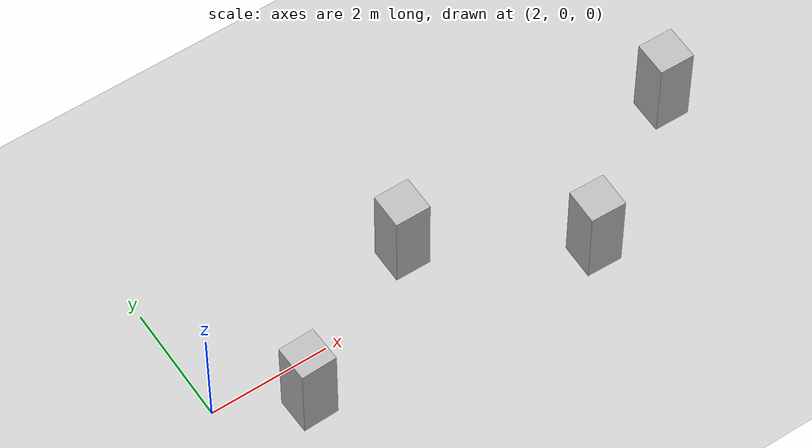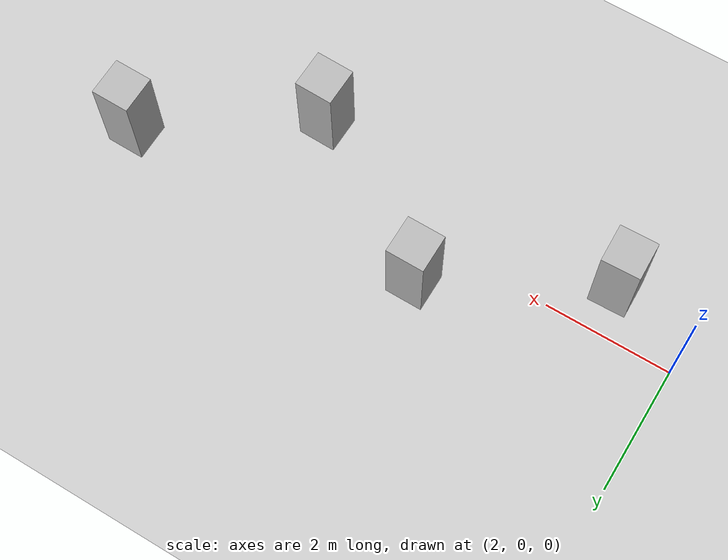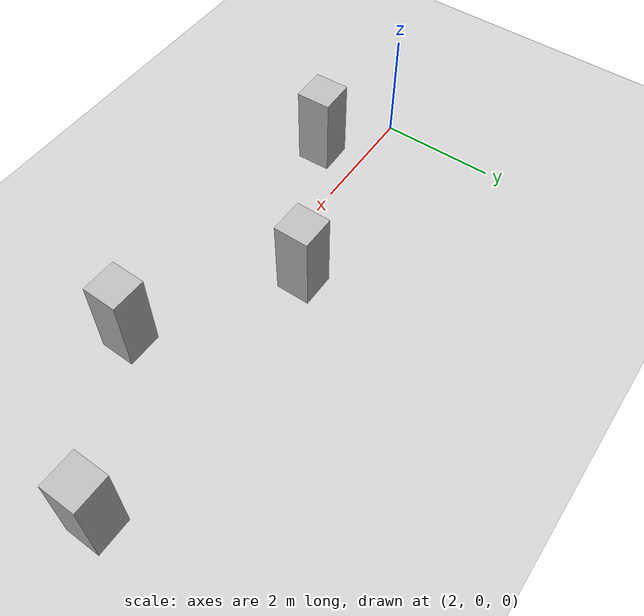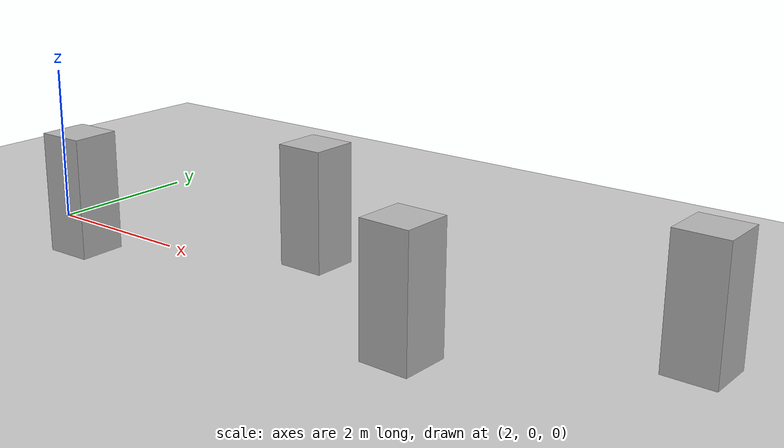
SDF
<?xml version="1.0"?>
<sdf version="1.6">
  <world name="v2-04g-r1-static-s4928">
    <gravity>0 0 -9.81</gravity>
    <physics name="v2_deterministic" type="ode">
      <max_step_size>0.002</max_step_size>
      <real_time_update_rate>500</real_time_update_rate>
    </physics>
    <include>
      <uri>model://sun</uri>
    </include>
    <include>
      <uri>model://ground_plane</uri>
    </include>
    <model name="pillar-1">
      <static>true</static>
      <pose>3.254413127 -0.703653779 0.750000000 0 0 0.027331152</pose>
      <link name="link">
        <collision name="collision">
          <geometry>
            <box>
              <size>0.600000 0.600000 1.500000</size>
            </box>
          </geometry>
        </collision>
        <visual name="visual">
          <geometry>
            <box>
              <size>0.600000 0.600000 1.500000</size>
            </box>
          </geometry>
        </visual>
      </link>
    </model>
    <model name="pillar-2">
      <static>true</static>
      <pose>5.838490797 0.704519603 0.750000000 0 0 -0.005849778</pose>
      <link name="link">
        <collision name="collision">
          <geometry>
            <box>
              <size>0.600000 0.600000 1.500000</size>
            </box>
          </geometry>
        </collision>
        <visual name="visual">
          <geometry>
            <box>
              <size>0.600000 0.600000 1.500000</size>
            </box>
          </geometry>
        </visual>
      </link>
    </model>
    <model name="pillar-3">
      <static>true</static>
      <pose>8.276570220 -0.847160881 0.750000000 0 0 -0.025961405</pose>
      <link name="link">
        <collision name="collision">
          <geometry>
            <box>
              <size>0.600000 0.600000 1.500000</size>
            </box>
          </geometry>
        </collision>
        <visual name="visual">
          <geometry>
            <box>
              <size>0.600000 0.600000 1.500000</size>
            </box>
          </geometry>
        </visual>
      </link>
    </model>
    <model name="pillar-4">
      <static>true</static>
      <pose>10.701829542 0.756572936 0.750000000 0 0 -0.012812723</pose>
      <link name="link">
        <collision name="collision">
          <geometry>
            <box>
              <size>0.600000 0.600000 1.500000</size>
            </box>
          </geometry>
        </collision>
        <visual name="visual">
          <geometry>
            <box>
              <size>0.600000 0.600000 1.500000</size>
            </box>
          </geometry>
        </visual>
      </link>
    </model>
  </world>
</sdf>
